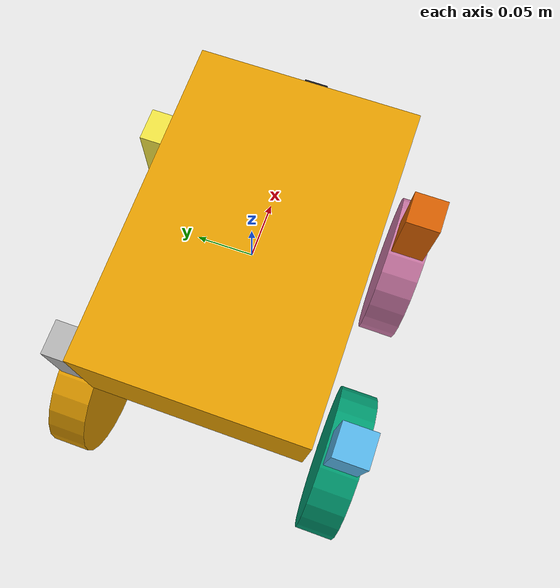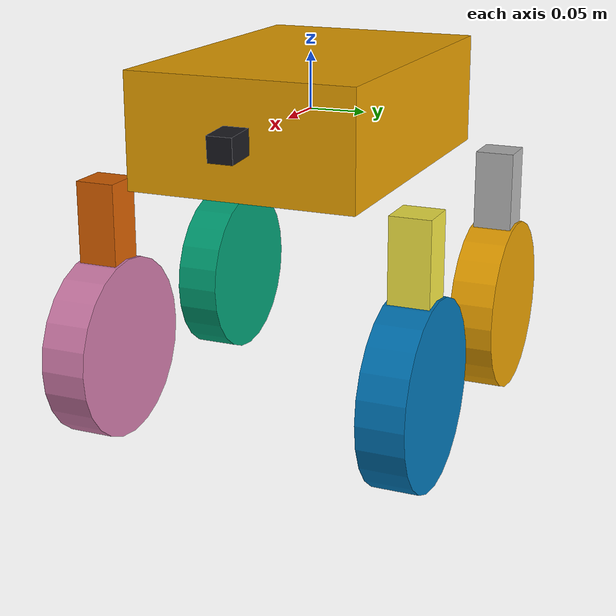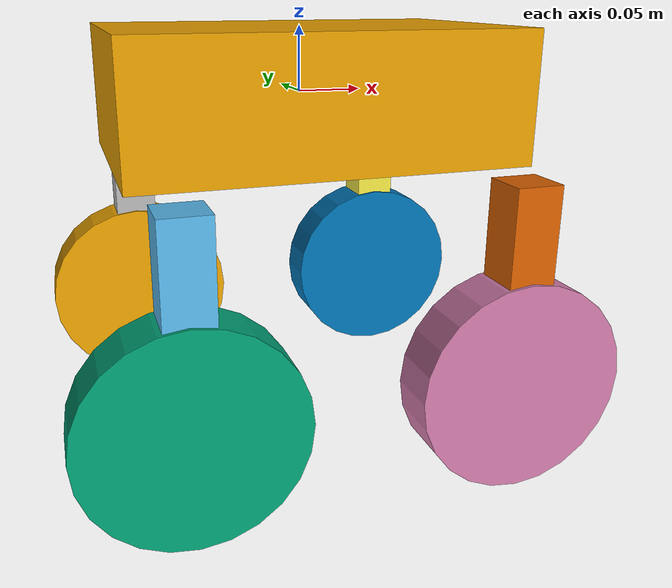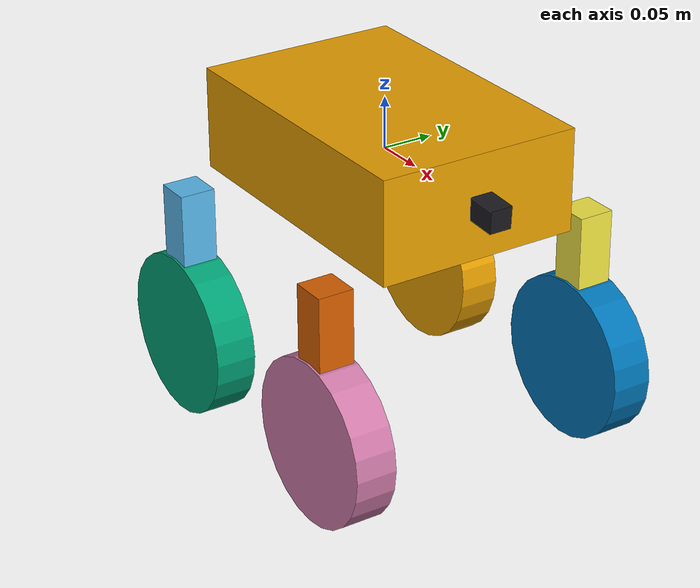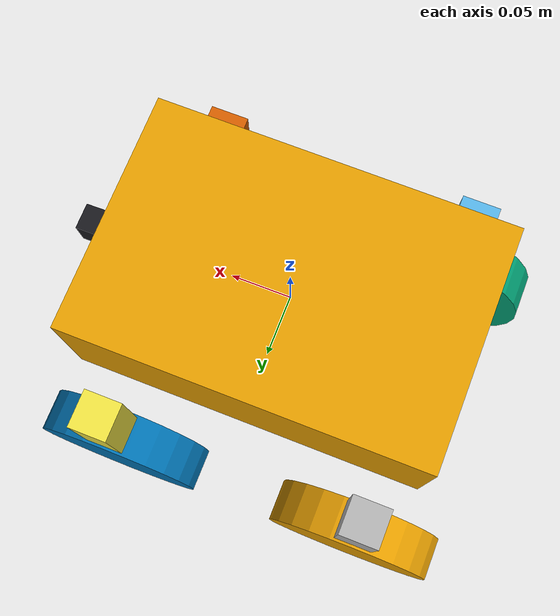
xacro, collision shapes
<?xml version="1.0"?>
<robot xmlns:xacro="http://www.ros.org/wiki/xacro" name="student_rover">
  <xacro:property name="body_x" value="0.30"/>
  <xacro:property name="body_y" value="0.20"/>
  <xacro:property name="body_z" value="0.10"/>
  <xacro:property name="wheelbase" value="0.24"/>
  <xacro:property name="track_width" value="0.28"/>
  <xacro:property name="leg_length" value="0.15"/>
  <xacro:property name="leg_thickness" value="0.035"/>
  <xacro:property name="wheel_radius" value="0.08"/>
  <xacro:property name="wheel_width" value="0.04"/>

  <xacro:property name="body_mass" value="1.20"/>
  <xacro:property name="leg_mass" value="0.12"/>
  <xacro:property name="wheel_mass" value="0.08"/>
  <xacro:property name="lidar_box_x" value="0.045"/>
  <xacro:property name="lidar_box_y" value="0.045"/>
  <xacro:property name="lidar_box_z" value="0.030"/>
  <xacro:property name="camera_box_x" value="0.030"/>
  <xacro:property name="camera_box_y" value="0.022"/>
  <xacro:property name="camera_box_z" value="0.022"/>
  <xacro:property name="camera_mass" value="0.02"/>

  <xacro:macro name="box_inertial" params="mass x y z ox:=0 oy:=0 oz:=0">
    <inertial>
      <origin xyz="${ox} ${oy} ${oz}" rpy="0 0 0"/>
      <mass value="${mass}"/>
      <inertia ixx="${mass*(y*y+z*z)/12.0}" ixy="0" ixz="0"
               iyy="${mass*(x*x+z*z)/12.0}" iyz="0"
               izz="${mass*(x*x+y*y)/12.0}"/>
    </inertial>
  </xacro:macro>

  <!-- Cylinder axis is the wheel joint y-axis. -->
  <xacro:macro name="wheel_inertial_y" params="mass radius width">
    <inertial>
      <origin xyz="0 0 0" rpy="0 0 0"/>
      <mass value="${mass}"/>
      <inertia ixx="${mass*(3.0*radius*radius + width*width)/12.0}" ixy="0" ixz="0"
               iyy="${0.5*mass*radius*radius}" iyz="0"
               izz="${mass*(3.0*radius*radius + width*width)/12.0}"/>
    </inertial>
  </xacro:macro>

  <link name="base_link">
    <visual>
      <origin xyz="0 0 -0.04025" rpy="0 0 0"/>
      <geometry>
        <mesh filename="file://$(find rover_description)/meshes/visual/body_visual_simplified.glb" scale="1 1 1"/>
      </geometry>
    </visual>
    <collision>
      <origin xyz="0 0 0" rpy="0 0 0"/>
      <geometry><box size="${body_x} ${body_y} ${body_z}"/></geometry>
    </collision>
    <xacro:box_inertial mass="${body_mass}" x="${body_x}" y="${body_y}" z="${body_z}"/>
  </link>

  <link name="lidar_link">
    <visual>
      <origin xyz="0 0 0" rpy="0 0 0"/>
      <geometry><box size="${lidar_box_x} ${lidar_box_y} ${lidar_box_z}"/></geometry>
      <material name="lidar_gray">
        <color rgba="0.20 0.20 0.24 1.0"/>
      </material>
    </visual>
  </link>

  <joint name="lidar_joint" type="fixed">
    <parent link="base_link"/>
    <child link="lidar_link"/>
    <origin xyz="${body_x/2.0 + lidar_box_x/2.0} 0 ${-body_z/2.0 - lidar_box_z/0.7}" rpy="0 0.0 0"/> #TODO: Adjust the lidar pitch and position to be more useful for obstacle detection.
  </joint>

  <link name="front_camera_link">
    <visual>
      <origin xyz="0 0 0" rpy="0 0 0"/>
      <geometry><box size="${camera_box_x} ${camera_box_y} ${camera_box_z}"/></geometry>
      <material name="camera_black">
        <color rgba="0.10 0.10 0.12 1.0"/>
      </material>
    </visual>
    <collision>
      <origin xyz="0 0 0" rpy="0 0 0"/>
      <geometry><box size="${camera_box_x} ${camera_box_y} ${camera_box_z}"/></geometry>
    </collision>
    <xacro:box_inertial mass="${camera_mass}" x="${camera_box_x}" y="${camera_box_y}" z="${camera_box_z}"/>
  </link>

  <joint name="front_camera_joint" type="fixed">
    <parent link="base_link"/>
    <child link="front_camera_link"/>
    <!-- Front-face mount with a mild downward view between the tested extremes. -->
    <origin xyz="${body_x/2.0 + camera_box_x/2.0} 0 0" rpy="0 0.065 0"/>
  </joint>

  <xacro:macro name="leg_and_wheel" params="prefix x y">
    <link name="${prefix}_leg_link">
      <visual>
        <origin xyz="0 0 0" rpy="0 0 0"/>
        <geometry>
          <mesh filename="file://$(find rover_description)/meshes/visual/arm_visual_simplified.glb" scale="1 1 1"/>
        </geometry>
      </visual>
      <collision>
        <origin xyz="0 0 ${-leg_length/2.0}" rpy="0 0 0"/>
        <geometry><box size="${leg_thickness} ${leg_thickness} ${leg_length}"/></geometry>
      </collision>
      <xacro:box_inertial mass="${leg_mass}" x="${leg_thickness}" y="${leg_thickness}" z="${leg_length}" oz="${-leg_length/2.0}"/>
    </link>

    <joint name="${prefix}_leg_joint" type="revolute">
      <parent link="base_link"/>
      <child link="${prefix}_leg_link"/>
      <origin xyz="${x} ${y} ${-body_z/2.0}" rpy="0 0 0"/>
      <axis xyz="0 1 0"/>
      <limit lower="-0.7" upper="0.7" effort="25" velocity="1.0"/>
      <dynamics damping="1.0" friction="0.2"/>
    </joint>

    <link name="${prefix}_wheel_link">
      <visual>
        <origin xyz="0 0 0" rpy="0 0 0"/>
        <geometry>
          <mesh filename="file://$(find rover_description)/meshes/visual/wheel_visual_simplified.glb" scale="1 1 1"/>
        </geometry>
      </visual>
      <collision>
        <origin xyz="0 0 0" rpy="${pi/2.0} 0 0"/>
        <geometry><cylinder radius="${wheel_radius}" length="${wheel_width}"/></geometry>
      </collision>
      <xacro:wheel_inertial_y mass="${wheel_mass}" radius="${wheel_radius}" width="${wheel_width}"/>
    </link>

    <joint name="${prefix}_wheel_joint" type="continuous">
      <parent link="${prefix}_leg_link"/>
      <child link="${prefix}_wheel_link"/>
      <origin xyz="0 0 ${-leg_length}" rpy="0 0 0"/>
      <axis xyz="0 1 0"/>
      <dynamics damping="0.02" friction="0.01"/>
    </joint>
  </xacro:macro>

  <xacro:leg_and_wheel prefix="front_left"  x="${ wheelbase/2.0}" y="${ track_width/2.0}"/>
  <xacro:leg_and_wheel prefix="front_right" x="${ wheelbase/2.0}" y="${-track_width/2.0}"/>
  <xacro:leg_and_wheel prefix="rear_left"   x="${-wheelbase/2.0}" y="${ track_width/2.0}"/>
  <xacro:leg_and_wheel prefix="rear_right"  x="${-wheelbase/2.0}" y="${-track_width/2.0}"/>

  <ros2_control name="GazeboSystem" type="system">
    <hardware>
      <plugin>gz_ros2_control/GazeboSimSystem</plugin>
    </hardware>

    <xacro:macro name="wheel_ros2_control" params="joint_name">
      <joint name="${joint_name}">
        <command_interface name="velocity">
          <param name="min">-20.0</param>
          <param name="max">20.0</param>
        </command_interface>
        <state_interface name="position"/>
        <state_interface name="velocity"/>
      </joint>
    </xacro:macro>

    <xacro:macro name="leg_ros2_control" params="joint_name">
      <joint name="${joint_name}">
        <command_interface name="position">
          <param name="min">-0.7</param>
          <param name="max">0.7</param>
        </command_interface>
        <state_interface name="position"/>
        <state_interface name="velocity"/>
      </joint>
    </xacro:macro>

    <xacro:leg_ros2_control joint_name="front_left_leg_joint"/>
    <xacro:leg_ros2_control joint_name="front_right_leg_joint"/>
    <xacro:leg_ros2_control joint_name="rear_left_leg_joint"/>
    <xacro:leg_ros2_control joint_name="rear_right_leg_joint"/>

    <xacro:wheel_ros2_control joint_name="front_left_wheel_joint"/>
    <xacro:wheel_ros2_control joint_name="front_right_wheel_joint"/>
    <xacro:wheel_ros2_control joint_name="rear_left_wheel_joint"/>
    <xacro:wheel_ros2_control joint_name="rear_right_wheel_joint"/>
  </ros2_control>

  <gazebo>
    <plugin filename="gz_ros2_control-system" name="gz_ros2_control::GazeboSimROS2ControlPlugin">
      <parameters>$(find rover_gazebo)/config/rover_controllers.yaml</parameters>
    </plugin>
  </gazebo>

  <gazebo reference="lidar_link">
    <sensor name="front_planar_lidar" type="gpu_lidar">
      <always_on>true</always_on>
      <update_rate>10</update_rate>
      <visualize>true</visualize>
      <gz_frame_id>lidar_link</gz_frame_id>
      <topic>/scan</topic>
      <lidar>
        <scan>
          <horizontal>
            <samples>181</samples>
            <resolution>1</resolution>
            <min_angle>${-pi/2.0}</min_angle>
            <max_angle>${pi/2.0}</max_angle>
          </horizontal>
          <vertical>
            <samples>1</samples>
            <resolution>1</resolution>
            <min_angle>0</min_angle>
            <max_angle>0</max_angle>
          </vertical>
        </scan>
        <range>
          <min>0.10</min>
          <max>8.00</max>
          <resolution>0.01</resolution>
        </range>
      </lidar>
    </sensor>
  </gazebo>

  <gazebo reference="front_camera_link">
    <sensor name="front_camera" type="camera">
      <always_on>true</always_on>
      <update_rate>8</update_rate>
      <visualize>false</visualize>
      <gz_frame_id>front_camera_link</gz_frame_id>
      <topic>/front_camera</topic>
      <camera>
        <horizontal_fov>1.047</horizontal_fov>
        <image>
          <width>320</width>
          <height>240</height>
          <format>R8G8B8</format>
        </image>
        <clip>
          <near>0.05</near>
          <far>10.0</far>
        </clip>
      </camera>
    </sensor>
  </gazebo>
</robot>
